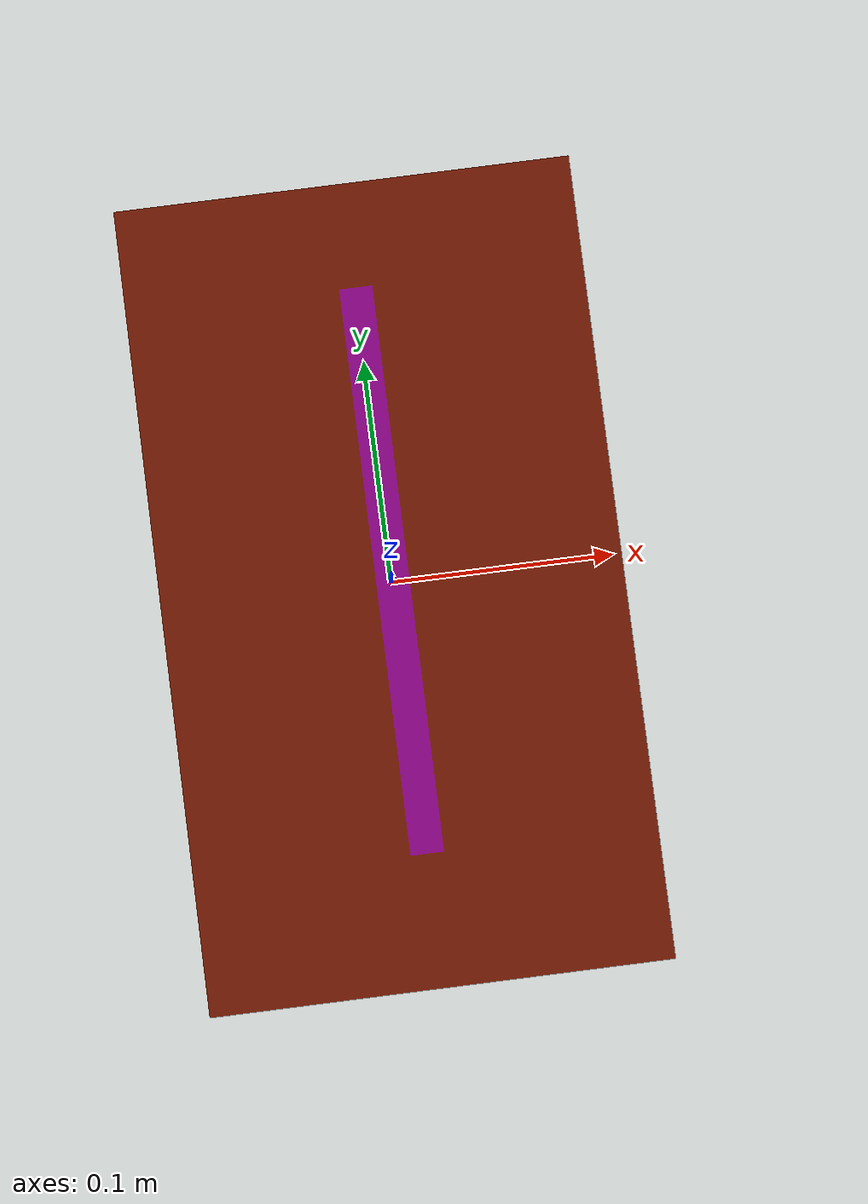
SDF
<?xml version="1.0" ?>
<sdf version="1.5">
  <model name="marker_bin_lid">
    <!-- Sub should be able to move marker bin lid -->
    <static>false</static>
    <link name="base_link">

      <inertial>
        <mass>1.0</mass>
        <inertia> <!-- inertias are tricky to compute -->
          <!-- http://gazebosim.org/tutorials?tut=inertia&cat=build_robot -->
          <ixx>0.083</ixx>       <!-- for a box: ixx = 0.083 * mass * (y*y + z*z) -->
          <ixy>0.0</ixy>         <!-- for a box: ixy = 0 -->
          <ixz>0.0</ixz>         <!-- for a box: ixz = 0 -->
          <iyy>0.083</iyy>       <!-- for a box: iyy = 0.083 * mass * (x*x + z*z) -->
          <iyz>0.0</iyz>         <!-- for a box: iyz = 0 -->
          <izz>0.083</izz>       <!-- for a box: izz = 0.083 * mass * (x*x + y*y) -->
        </inertia>
      </inertial>

      <collision name="collision">
        <pose>0 0 0 0 0 0</pose>
        <geometry>
          <mesh>
            <uri>model://marker_bin_lid/meshes/marker_bin_lid.dae</uri>
          </mesh>
        </geometry>
      </collision>

      <visual name="visual">
        <cast_shadows>true</cast_shadows>
        <pose>0 0 0 0 0 0</pose>
        <geometry>
          <mesh>
            <uri>model://marker_bin_lid/meshes/marker_bin_lid.dae</uri>
          </mesh>
        </geometry>
      </visual>
    </link>
  </model>
</sdf>
